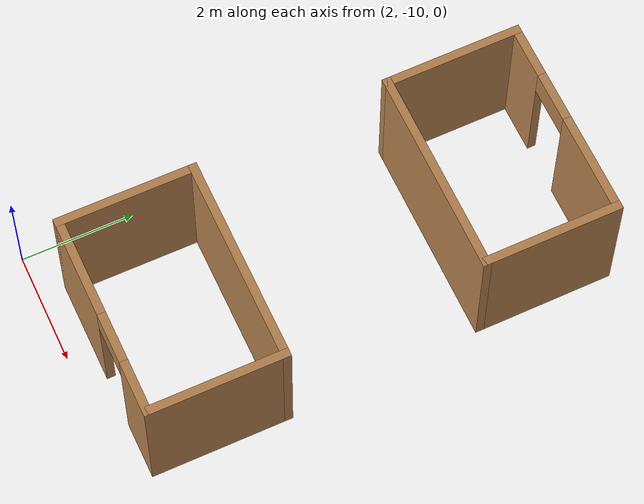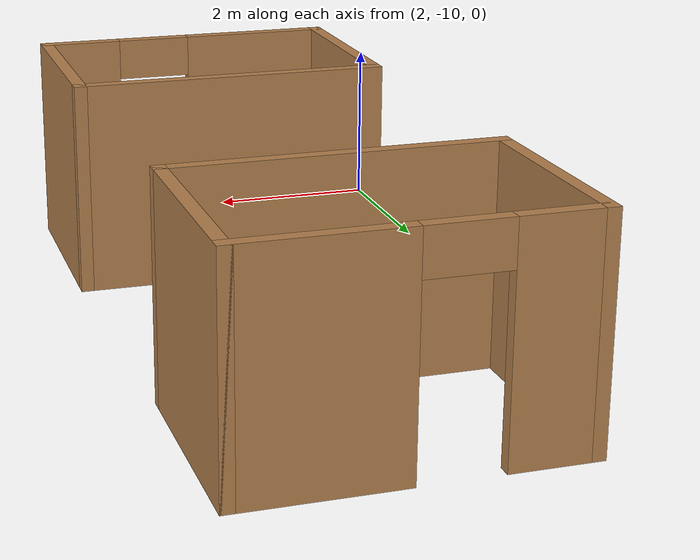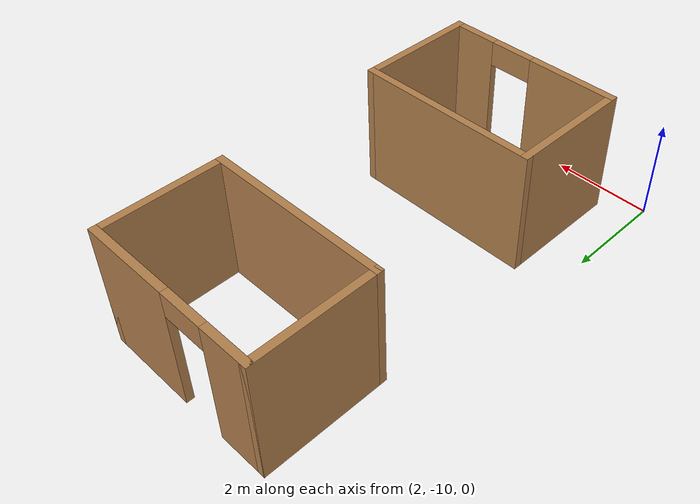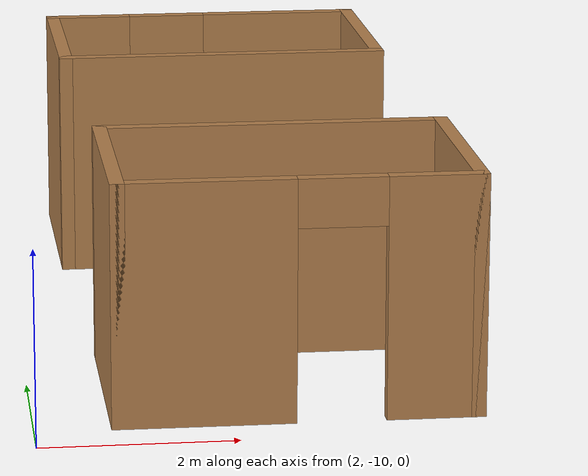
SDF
<sdf version="1.6">
 <world name="default">
  <model name="Small_Room_clone_0">
   <pose>4.49489 -2.40828 0 0 0 -3.13544</pose>
   <link name="Wall_0">
    <pose>0 -1.175 0 0 -0 0</pose>
    <visual name="Wall_0_Visual_0">
     <pose>-0.9525 0 1.25 0 -0 0</pose>
     <geometry><box><size>1.845 0.15 2.5</size></box></geometry>
     <material>
      <script><uri>file://media/materials/scripts/gazebo.material</uri><name>Gazebo/Wood</name></script>
      <ambient>1 1 1 1</ambient>
     </material>
     <meta><layer>0</layer></meta>
    </visual>
    <collision name="Wall_0_Collision_0">
     <geometry><box><size>1.845 0.15 2.5</size></box></geometry>
     <pose>-0.9525 0 1.25 0 -0 0</pose>
    </collision>
    <visual name="Wall_0_Visual_1">
     <pose>1.3725 0 1.25 0 -0 0</pose>
     <geometry><box><size>1.005 0.15 2.5</size></box></geometry>
     <material>
      <script><uri>file://media/materials/scripts/gazebo.material</uri><name>Gazebo/Wood</name></script>
      <ambient>1 1 1 1</ambient>
     </material>
     <meta><layer>0</layer></meta>
    </visual>
    <collision name="Wall_0_Collision_1">
     <geometry><box><size>1.005 0.15 2.5</size></box></geometry>
     <pose>1.3725 0 1.25 0 -0 0</pose>
    </collision>
    <visual name="Wall_0_Visual_2">
     <pose>0.42 0 2.25 0 -0 0</pose>
     <geometry><box><size>0.9 0.15 0.5</size></box></geometry>
     <material>
      <script><uri>file://media/materials/scripts/gazebo.material</uri><name>Gazebo/Wood</name></script>
      <ambient>1 1 1 1</ambient>
     </material>
     <meta><layer>0</layer></meta>
    </visual>
    <collision name="Wall_0_Collision_2">
     <geometry><box><size>0.9 0.15 0.5</size></box></geometry>
     <pose>0.42 0 2.25 0 -0 0</pose>
    </collision>
   </link>
   <link name="Wall_1">
    <collision name="Wall_1_Collision">
     <geometry><box><size>2.5 0.15 2.5</size></box></geometry>
     <pose>0 0 1.25 0 -0 0</pose>
    </collision>
    <visual name="Wall_1_Visual">
     <pose>0 0 1.25 0 -0 0</pose>
     <geometry><box><size>2.5 0.15 2.5</size></box></geometry>
     <material>
      <script><uri>file://media/materials/scripts/gazebo.material</uri><name>Gazebo/Wood</name></script>
      <ambient>1 1 1 1</ambient>
     </material>
     <meta><layer>0</layer></meta>
    </visual>
    <pose>1.8 0 0 0 -0 1.5708</pose>
   </link>
   <link name="Wall_2">
    <collision name="Wall_2_Collision">
     <geometry><box><size>3.75 0.15 2.5</size></box></geometry>
     <pose>0 0 1.25 0 -0 0</pose>
    </collision>
    <visual name="Wall_2_Visual">
     <pose>0 0 1.25 0 -0 0</pose>
     <geometry><box><size>3.75 0.15 2.5</size></box></geometry>
     <material>
      <script><uri>file://media/materials/scripts/gazebo.material</uri><name>Gazebo/Wood</name></script>
      <ambient>0.760784 0.662745 0.627451 1</ambient>
     </material>
     <meta><layer>0</layer></meta>
    </visual>
    <pose>0 1.175 0 0 -0 3.14159</pose>
   </link>
   <link name="Wall_3">
    <collision name="Wall_3_Collision">
     <geometry><box><size>2.5 0.15 2.5</size></box></geometry>
     <pose>0 0 1.25 0 -0 0</pose>
    </collision>
    <visual name="Wall_3_Visual">
     <pose>0 0 1.25 0 -0 0</pose>
     <geometry><box><size>2.5 0.15 2.5</size></box></geometry>
     <material>
      <script><uri>file://media/materials/scripts/gazebo.material</uri><name>Gazebo/Wood</name></script>
      <ambient>0.760784 0.662745 0.627451 1</ambient>
     </material>
     <meta><layer>0</layer></meta>
    </visual>
    <pose>-1.8 0 0 0 0 -1.5708</pose>
   </link>
   <static>1</static>
  </model>
  <model name="Small_Room_clone_6_clone_1_0">
   <link name="Wall_0">
    <pose>0 -1.175 0 0 -0 0</pose>
    <visual name="Wall_0_Visual_1">
     <pose>1.3725 0 1.25 0 -0 0</pose>
     <geometry><box><size>1.005 0.15 2.5</size></box></geometry>
     <material>
      <script><uri>file://media/materials/scripts/gazebo.material</uri><name>Gazebo/Wood</name></script>
      <ambient>1 1 1 1</ambient>
      <diffuse>1 1 1 1</diffuse>
      <specular>0.2 0.2 0.2 1</specular>
      <emissive>0 0 0 1</emissive>
     </material>
     <meta><layer>0</layer></meta>
    </visual>
    <visual name="Wall_0_Visual_0">
     <pose>-0.9525 0 1.25 0 -0 0</pose>
     <geometry><box><size>1.845 0.15 2.5</size></box></geometry>
     <material>
      <script><uri>file://media/materials/scripts/gazebo.material</uri><name>Gazebo/Wood</name></script>
      <ambient>1 1 1 1</ambient>
      <diffuse>1 1 1 1</diffuse>
      <specular>0.2 0.2 0.2 1</specular>
      <emissive>0 0 0 1</emissive>
     </material>
     <meta><layer>0</layer></meta>
    </visual>
    <visual name="Wall_0_Visual_2">
     <pose>0.42 0 2.25 0 -0 0</pose>
     <geometry><box><size>0.9 0.15 0.5</size></box></geometry>
     <material>
      <script><uri>file://media/materials/scripts/gazebo.material</uri><name>Gazebo/Wood</name></script>
      <ambient>1 1 1 1</ambient>
      <diffuse>1 1 1 1</diffuse>
      <specular>0.2 0.2 0.2 1</specular>
      <emissive>0 0 0 1</emissive>
     </material>
     <meta><layer>0</layer></meta>
    </visual>
    <collision name="Wall_0_Collision_0">
     <pose>-0.9525 0 1.25 0 -0 0</pose>
     <geometry><box><size>1.845 0.15 2.5</size></box></geometry>
     <surface>
      <friction>
       <ode><mu>1</mu><mu2>1</mu2><fdir1>0 0 0</fdir1><slip1>0</slip1><slip2>0</slip2></ode>
       <torsional>
        <coefficient>1</coefficient>
        <patch_radius>0</patch_radius>
        <surface_radius>0</surface_radius>
        <use_patch_radius>1</use_patch_radius>
        <ode><slip>0</slip></ode>
       </torsional>
      </friction>
      <bounce><restitution_coefficient>0</restitution_coefficient><threshold>1e+06</threshold></bounce>
      <contact>
       <collide_without_contact>0</collide_without_contact>
       <collide_without_contact_bitmask>1</collide_without_contact_bitmask>
       <collide_bitmask>1</collide_bitmask>
       <ode>
        <soft_cfm>0</soft_cfm>
        <soft_erp>0.2</soft_erp>
        <kp>1e+13</kp>
        <kd>1</kd>
        <max_vel>0.01</max_vel>
        <min_depth>0</min_depth>
       </ode>
       <bullet>
        <split_impulse>1</split_impulse>
        <split_impulse_penetration_threshold>-0.01</split_impulse_penetration_threshold>
        <soft_cfm>0</soft_cfm>
        <soft_erp>0.2</soft_erp>
        <kp>1e+13</kp>
        <kd>1</kd>
       </bullet>
      </contact>
     </surface>
    </collision>
    <collision name="Wall_0_Collision_1">
     <pose>1.3725 0 1.25 0 -0 0</pose>
     <geometry><box><size>1.005 0.15 2.5</size></box></geometry>
     <surface>
      <friction>
       <ode><mu>1</mu><mu2>1</mu2><fdir1>0 0 0</fdir1><slip1>0</slip1><slip2>0</slip2></ode>
       <torsional>
        <coefficient>1</coefficient>
        <patch_radius>0</patch_radius>
        <surface_radius>0</surface_radius>
        <use_patch_radius>1</use_patch_radius>
        <ode><slip>0</slip></ode>
       </torsional>
      </friction>
      <bounce><restitution_coefficient>0</restitution_coefficient><threshold>1e+06</threshold></bounce>
      <contact>
       <collide_without_contact>0</collide_without_contact>
       <collide_without_contact_bitmask>1</collide_without_contact_bitmask>
       <collide_bitmask>1</collide_bitmask>
       <ode>
        <soft_cfm>0</soft_cfm>
        <soft_erp>0.2</soft_erp>
        <kp>1e+13</kp>
        <kd>1</kd>
        <max_vel>0.01</max_vel>
        <min_depth>0</min_depth>
       </ode>
       <bullet>
        <split_impulse>1</split_impulse>
        <split_impulse_penetration_threshold>-0.01</split_impulse_penetration_threshold>
        <soft_cfm>0</soft_cfm>
        <soft_erp>0.2</soft_erp>
        <kp>1e+13</kp>
        <kd>1</kd>
       </bullet>
      </contact>
     </surface>
    </collision>
    <collision name="Wall_0_Collision_2">
     <pose>0.42 0 2.25 0 -0 0</pose>
     <geometry><box><size>0.9 0.15 0.5</size></box></geometry>
     <surface>
      <friction>
       <ode><mu>1</mu><mu2>1</mu2><fdir1>0 0 0</fdir1><slip1>0</slip1><slip2>0</slip2></ode>
       <torsional>
        <coefficient>1</coefficient>
        <patch_radius>0</patch_radius>
        <surface_radius>0</surface_radius>
        <use_patch_radius>1</use_patch_radius>
        <ode><slip>0</slip></ode>
       </torsional>
      </friction>
      <bounce><restitution_coefficient>0</restitution_coefficient><threshold>1e+06</threshold></bounce>
      <contact>
       <collide_without_contact>0</collide_without_contact>
       <collide_without_contact_bitmask>1</collide_without_contact_bitmask>
       <collide_bitmask>1</collide_bitmask>
       <ode>
        <soft_cfm>0</soft_cfm>
        <soft_erp>0.2</soft_erp>
        <kp>1e+13</kp>
        <kd>1</kd>
        <max_vel>0.01</max_vel>
        <min_depth>0</min_depth>
       </ode>
       <bullet>
        <split_impulse>1</split_impulse>
        <split_impulse_penetration_threshold>-0.01</split_impulse_penetration_threshold>
        <soft_cfm>0</soft_cfm>
        <soft_erp>0.2</soft_erp>
        <kp>1e+13</kp>
        <kd>1</kd>
       </bullet>
      </contact>
     </surface>
    </collision>
   </link>
   <link name="Wall_1">
    <pose>1.8 0 0 0 -0 1.5708</pose>
    <visual name="Wall_1_Visual">
     <pose>0 0 1.25 0 -0 0</pose>
     <geometry><box><size>2.5 0.15 2.5</size></box></geometry>
     <material>
      <script><uri>file://media/materials/scripts/gazebo.material</uri><name>Gazebo/Wood</name></script>
      <ambient>1 1 1 1</ambient>
      <diffuse>1 1 1 1</diffuse>
      <specular>0.2 0.2 0.2 1</specular>
      <emissive>0 0 0 1</emissive>
     </material>
     <meta><layer>0</layer></meta>
    </visual>
    <collision name="Wall_1_Collision">
     <pose>0 0 1.25 0 -0 0</pose>
     <geometry><box><size>2.5 0.15 2.5</size></box></geometry>
     <surface>
      <friction>
       <ode><mu>1</mu><mu2>1</mu2><fdir1>0 0 0</fdir1><slip1>0</slip1><slip2>0</slip2></ode>
       <torsional>
        <coefficient>1</coefficient>
        <patch_radius>0</patch_radius>
        <surface_radius>0</surface_radius>
        <use_patch_radius>1</use_patch_radius>
        <ode><slip>0</slip></ode>
       </torsional>
      </friction>
      <bounce><restitution_coefficient>0</restitution_coefficient><threshold>1e+06</threshold></bounce>
      <contact>
       <collide_without_contact>0</collide_without_contact>
       <collide_without_contact_bitmask>1</collide_without_contact_bitmask>
       <collide_bitmask>1</collide_bitmask>
       <ode>
        <soft_cfm>0</soft_cfm>
        <soft_erp>0.2</soft_erp>
        <kp>1e+13</kp>
        <kd>1</kd>
        <max_vel>0.01</max_vel>
        <min_depth>0</min_depth>
       </ode>
       <bullet>
        <split_impulse>1</split_impulse>
        <split_impulse_penetration_threshold>-0.01</split_impulse_penetration_threshold>
        <soft_cfm>0</soft_cfm>
        <soft_erp>0.2</soft_erp>
        <kp>1e+13</kp>
        <kd>1</kd>
       </bullet>
      </contact>
     </surface>
    </collision>
   </link>
   <link name="Wall_2">
    <pose>0 1.175 0 0 -0 3.14159</pose>
    <inertial>
     <mass>1</mass>
     <inertia><ixx>1</ixx><ixy>0</ixy><ixz>0</ixz><iyy>1</iyy><iyz>0</iyz><izz>1</izz></inertia>
    </inertial>
    <visual name="Wall_2_Visual">
     <pose>0 0 1.25 0 -0 0</pose>
     <geometry><box><size>3.75 0.15 2.5</size></box></geometry>
     <material>
      <script><uri>file://media/materials/scripts/gazebo.material</uri><name>Gazebo/Wood</name></script>
      <ambient>0.361 1 0.227 1</ambient>
      <diffuse>0.6 0.5 0.9 1</diffuse>
      <specular>0.6 0.4 0.2 1</specular>
      <emissive>0 0 0 1</emissive>
      <shader type="vertex"><normal_map>__default__</normal_map></shader>
     </material>
     <meta><layer>0</layer></meta>
    </visual>
    <collision name="Wall_2_Collision">
     <pose>0 0 1.25 0 -0 0</pose>
     <geometry><box><size>3.75 0.15 2.5</size></box></geometry>
     <surface>
      <friction>
       <ode><mu>1</mu><mu2>1</mu2><fdir1>0 0 0</fdir1><slip1>0</slip1><slip2>0</slip2></ode>
       <torsional>
        <coefficient>1</coefficient>
        <patch_radius>0</patch_radius>
        <surface_radius>0</surface_radius>
        <use_patch_radius>1</use_patch_radius>
        <ode><slip>0</slip></ode>
       </torsional>
      </friction>
      <bounce><restitution_coefficient>0</restitution_coefficient><threshold>1e+06</threshold></bounce>
      <contact>
       <collide_without_contact>0</collide_without_contact>
       <collide_without_contact_bitmask>1</collide_without_contact_bitmask>
       <collide_bitmask>1</collide_bitmask>
       <ode>
        <soft_cfm>0</soft_cfm>
        <soft_erp>0.2</soft_erp>
        <kp>1e+13</kp>
        <kd>1</kd>
        <max_vel>0.01</max_vel>
        <min_depth>0</min_depth>
       </ode>
       <bullet>
        <split_impulse>1</split_impulse>
        <split_impulse_penetration_threshold>-0.01</split_impulse_penetration_threshold>
        <soft_cfm>0</soft_cfm>
        <soft_erp>0.2</soft_erp>
        <kp>1e+13</kp>
        <kd>1</kd>
       </bullet>
      </contact>
     </surface>
    </collision>
   </link>
   <link name="Wall_3">
    <pose>-1.8 0 0 0 0 -1.5708</pose>
    <inertial>
     <mass>1</mass>
     <inertia><ixx>1</ixx><ixy>0</ixy><ixz>0</ixz><iyy>1</iyy><iyz>0</iyz><izz>1</izz></inertia>
    </inertial>
    <visual name="Wall_3_Visual">
     <pose>0 0 1.25 0 -0 0</pose>
     <geometry><box><size>2.5 0.15 2.5</size></box></geometry>
     <material>
      <script><uri>file://media/materials/scripts/gazebo.material</uri><name>Gazebo/Wood</name></script>
      <ambient>1 0.263 0.127 1</ambient>
      <diffuse>1 1 1 1</diffuse>
      <specular>0.2 0.2 0.2 1</specular>
      <emissive>0 0 0 1</emissive>
      <shader type="vertex"><normal_map>__default__</normal_map></shader>
     </material>
     <meta><layer>0</layer></meta>
    </visual>
    <collision name="Wall_3_Collision">
     <pose>0 0 1.25 0 -0 0</pose>
     <geometry><box><size>2.5 0.15 2.5</size></box></geometry>
     <surface>
      <friction>
       <ode><mu>1</mu><mu2>1</mu2><fdir1>0 0 0</fdir1><slip1>0</slip1><slip2>0</slip2></ode>
       <torsional>
        <coefficient>1</coefficient>
        <patch_radius>0</patch_radius>
        <surface_radius>0</surface_radius>
        <use_patch_radius>1</use_patch_radius>
        <ode><slip>0</slip></ode>
       </torsional>
      </friction>
      <bounce><restitution_coefficient>0</restitution_coefficient><threshold>1e+06</threshold></bounce>
      <contact>
       <collide_without_contact>0</collide_without_contact>
       <collide_without_contact_bitmask>1</collide_without_contact_bitmask>
       <collide_bitmask>1</collide_bitmask>
       <ode>
        <soft_cfm>0</soft_cfm>
        <soft_erp>0.2</soft_erp>
        <kp>1e+13</kp>
        <kd>1</kd>
        <max_vel>0.01</max_vel>
        <min_depth>0</min_depth>
       </ode>
       <bullet>
        <split_impulse>1</split_impulse>
        <split_impulse_penetration_threshold>-0.01</split_impulse_penetration_threshold>
        <soft_cfm>0</soft_cfm>
        <soft_erp>0.2</soft_erp>
        <kp>1e+13</kp>
        <kd>1</kd>
       </bullet>
      </contact>
     </surface>
    </collision>
   </link>
   <static>1</static>
   <pose>4.64059 -8.29003 0 0 -0 0</pose>
  </model>
 </world>
</sdf>
